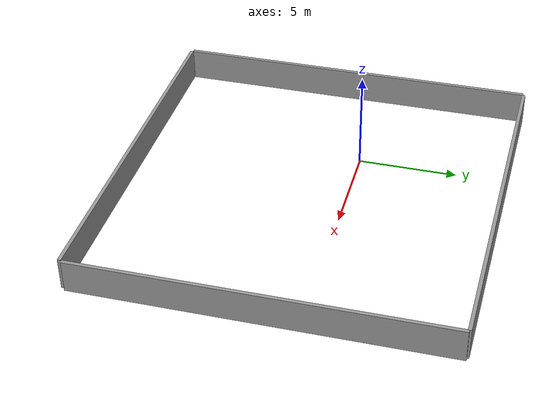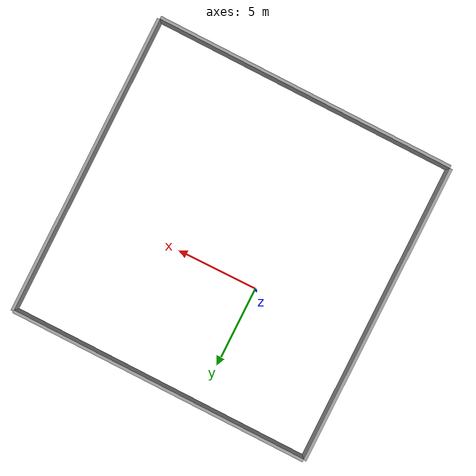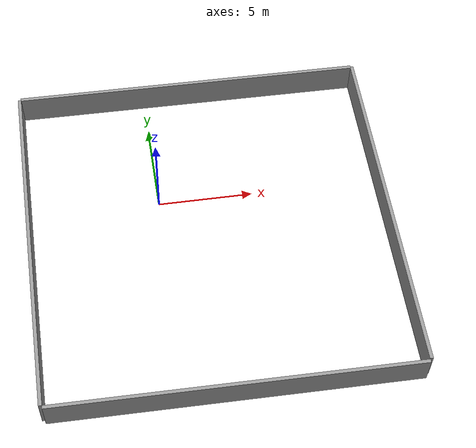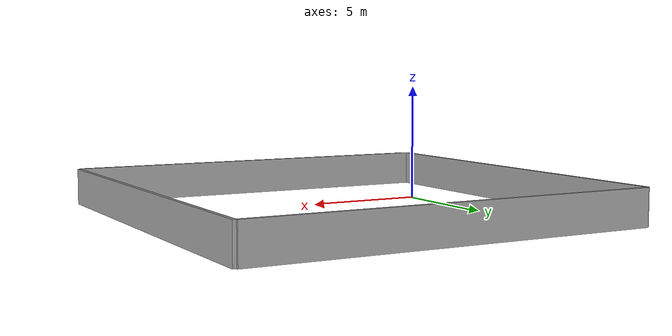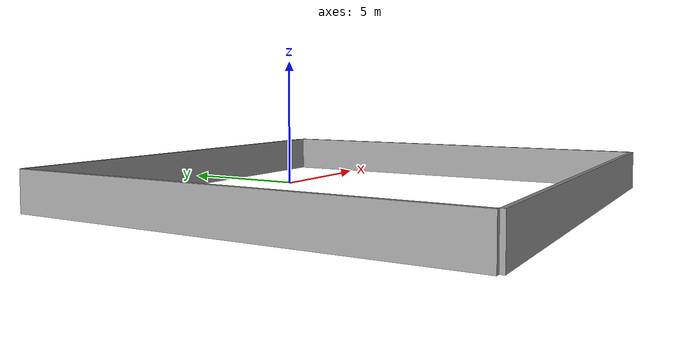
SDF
<?xml version='1.0'?>
<sdf version='1.6'>
  <model name='Confined_Area_20x20'>
    <link name='link_1'>
      <inertial>
        <mass>44564.1</mass>
        <inertia>
          <ixx>1.32603e+06</ixx>
          <ixy>0</ixy>
          <ixz>0</ixz>
          <iyy>11089.5</iyy>
          <iyz>0</iyz>
          <izz>1.31519e+06</izz>
        </inertia>
        <pose frame=''>0 0 0 0 -0 0</pose>
      </inertial>
      <pose frame=''>-6.97407 -1.86948 0 0 -0 0</pose>
      <gravity>1</gravity>
      <self_collide>0</self_collide>
      <kinematic>0</kinematic>
      <enable_wind>0</enable_wind>
      <visual name='visual'>
        <pose frame=''>0 0 0 0 -0 0</pose>
        <geometry>
          <box>
            <size>0.181322 18.8179 1.7185</size>
          </box>
        </geometry>
        <material>
          <lighting>1</lighting>
          <script>
            <uri>file://media/materials/scripts/gazebo.material</uri>
            <name>Gazebo/Grey</name>
          </script>
          <shader type='vertex'>
            <normal_map>__default__</normal_map>
          </shader>
        </material>
        <transparency>0</transparency>
        <cast_shadows>1</cast_shadows>
      </visual>
      <collision name='collision'>
        <laser_retro>0</laser_retro>
        <max_contacts>10</max_contacts>
        <pose frame=''>0 0 0 0 -0 0</pose>
        <geometry>
          <box>
            <size>0.181322 18.8179 1.7185</size>
          </box>
        </geometry>
        <surface>
          <friction>
            <ode>
              <mu>1</mu>
              <mu2>1</mu2>
              <fdir1>0 0 0</fdir1>
              <slip1>0</slip1>
              <slip2>0</slip2>
            </ode>
            <torsional>
              <coefficient>1</coefficient>
              <patch_radius>0</patch_radius>
              <surface_radius>0</surface_radius>
              <use_patch_radius>1</use_patch_radius>
              <ode>
                <slip>0</slip>
              </ode>
            </torsional>
          </friction>
          <bounce>
            <restitution_coefficient>0</restitution_coefficient>
            <threshold>1e+06</threshold>
          </bounce>
          <contact>
            <collide_without_contact>0</collide_without_contact>
            <collide_without_contact_bitmask>1</collide_without_contact_bitmask>
            <collide_bitmask>1</collide_bitmask>
            <ode>
              <soft_cfm>0</soft_cfm>
              <soft_erp>0.2</soft_erp>
              <kp>1e+13</kp>
              <kd>1</kd>
              <max_vel>0.01</max_vel>
              <min_depth>0</min_depth>
            </ode>
            <bullet>
              <split_impulse>1</split_impulse>
              <split_impulse_penetration_threshold>-0.01</split_impulse_penetration_threshold>
              <soft_cfm>0</soft_cfm>
              <soft_erp>0.2</soft_erp>
              <kp>1e+13</kp>
              <kd>1</kd>
            </bullet>
          </contact>
        </surface>
      </collision>
    </link>
    <link name='link_1_clone'>
      <inertial>
        <mass>44564.1</mass>
        <inertia>
          <ixx>1.32603e+06</ixx>
          <ixy>0</ixy>
          <ixz>0</ixz>
          <iyy>11089.5</iyy>
          <iyz>0</iyz>
          <izz>1.31519e+06</izz>
        </inertia>
        <pose frame=''>0 0 0 0 -0 0</pose>
      </inertial>
      <pose frame=''>11.9888 -2.03085 0.000703 0 -5.9e-05 0</pose>
      <gravity>1</gravity>
      <self_collide>0</self_collide>
      <kinematic>0</kinematic>
      <enable_wind>0</enable_wind>
      <visual name='visual'>
        <pose frame=''>0 0 0 0 -0 0</pose>
        <geometry>
          <box>
            <size>0.181322 18.8179 1.7185</size>
          </box>
        </geometry>
        <material>
          <lighting>1</lighting>
          <script>
            <uri>file://media/materials/scripts/gazebo.material</uri>
            <name>Gazebo/Grey</name>
          </script>
          <shader type='vertex'>
            <normal_map>__default__</normal_map>
          </shader>
        </material>
        <transparency>0</transparency>
        <cast_shadows>1</cast_shadows>
      </visual>
      <collision name='collision'>
        <laser_retro>0</laser_retro>
        <max_contacts>10</max_contacts>
        <pose frame=''>0 0 0 0 -0 0</pose>
        <geometry>
          <box>
            <size>0.181322 18.8179 1.7185</size>
          </box>
        </geometry>
        <surface>
          <friction>
            <ode>
              <mu>1</mu>
              <mu2>1</mu2>
              <fdir1>0 0 0</fdir1>
              <slip1>0</slip1>
              <slip2>0</slip2>
            </ode>
            <torsional>
              <coefficient>1</coefficient>
              <patch_radius>0</patch_radius>
              <surface_radius>0</surface_radius>
              <use_patch_radius>1</use_patch_radius>
              <ode>
                <slip>0</slip>
              </ode>
            </torsional>
          </friction>
          <bounce>
            <restitution_coefficient>0</restitution_coefficient>
            <threshold>1e+06</threshold>
          </bounce>
          <contact>
            <collide_without_contact>0</collide_without_contact>
            <collide_without_contact_bitmask>1</collide_without_contact_bitmask>
            <collide_bitmask>1</collide_bitmask>
            <ode>
              <soft_cfm>0</soft_cfm>
              <soft_erp>0.2</soft_erp>
              <kp>1e+13</kp>
              <kd>1</kd>
              <max_vel>0.01</max_vel>
              <min_depth>0</min_depth>
            </ode>
            <bullet>
              <split_impulse>1</split_impulse>
              <split_impulse_penetration_threshold>-0.01</split_impulse_penetration_threshold>
              <soft_cfm>0</soft_cfm>
              <soft_erp>0.2</soft_erp>
              <kp>1e+13</kp>
              <kd>1</kd>
            </bullet>
          </contact>
        </surface>
      </collision>
    </link>
    <link name='link_1_clone_0'>
      <inertial>
        <mass>44564.1</mass>
        <inertia>
          <ixx>1.32603e+06</ixx>
          <ixy>0</ixy>
          <ixz>0</ixz>
          <iyy>11089.5</iyy>
          <iyz>0</iyz>
          <izz>1.31519e+06</izz>
        </inertia>
        <pose frame=''>0 0 0 0 -0 0</pose>
      </inertial>
      <pose frame=''>2.5112 7.48856 0.000147 -5.9e-05 -1e-06 1.56029</pose>
      <gravity>1</gravity>
      <self_collide>0</self_collide>
      <kinematic>0</kinematic>
      <enable_wind>0</enable_wind>
      <visual name='visual'>
        <pose frame=''>0 0 0 0 -0 0</pose>
        <geometry>
          <box>
            <size>0.181322 18.8179 1.7185</size>
          </box>
        </geometry>
        <material>
          <lighting>1</lighting>
          <script>
            <uri>file://media/materials/scripts/gazebo.material</uri>
            <name>Gazebo/Grey</name>
          </script>
          <shader type='vertex'>
            <normal_map>__default__</normal_map>
          </shader>
        </material>
        <transparency>0</transparency>
        <cast_shadows>1</cast_shadows>
      </visual>
      <collision name='collision'>
        <laser_retro>0</laser_retro>
        <max_contacts>10</max_contacts>
        <pose frame=''>0 0 0 0 -0 0</pose>
        <geometry>
          <box>
            <size>0.181322 18.8179 1.7185</size>
          </box>
        </geometry>
        <surface>
          <friction>
            <ode>
              <mu>1</mu>
              <mu2>1</mu2>
              <fdir1>0 0 0</fdir1>
              <slip1>0</slip1>
              <slip2>0</slip2>
            </ode>
            <torsional>
              <coefficient>1</coefficient>
              <patch_radius>0</patch_radius>
              <surface_radius>0</surface_radius>
              <use_patch_radius>1</use_patch_radius>
              <ode>
                <slip>0</slip>
              </ode>
            </torsional>
          </friction>
          <bounce>
            <restitution_coefficient>0</restitution_coefficient>
            <threshold>1e+06</threshold>
          </bounce>
          <contact>
            <collide_without_contact>0</collide_without_contact>
            <collide_without_contact_bitmask>1</collide_without_contact_bitmask>
            <collide_bitmask>1</collide_bitmask>
            <ode>
              <soft_cfm>0</soft_cfm>
              <soft_erp>0.2</soft_erp>
              <kp>1e+13</kp>
              <kd>1</kd>
              <max_vel>0.01</max_vel>
              <min_depth>0</min_depth>
            </ode>
            <bullet>
              <split_impulse>1</split_impulse>
              <split_impulse_penetration_threshold>-0.01</split_impulse_penetration_threshold>
              <soft_cfm>0</soft_cfm>
              <soft_erp>0.2</soft_erp>
              <kp>1e+13</kp>
              <kd>1</kd>
            </bullet>
          </contact>
        </surface>
      </collision>
    </link>
    <link name='link_1_clone_0_clone'>
      <inertial>
        <mass>44564.1</mass>
        <inertia>
          <ixx>1.32603e+06</ixx>
          <ixy>0</ixy>
          <ixz>0</ixz>
          <iyy>11089.5</iyy>
          <iyz>0</iyz>
          <izz>1.31519e+06</izz>
        </inertia>
        <pose frame=''>0 0 0 0 -0 0</pose>
      </inertial>
      <pose frame=''>2.51624 -11.4629 0.000295 -0.000118 -2e-06 1.56029</pose>
      <gravity>1</gravity>
      <self_collide>0</self_collide>
      <kinematic>0</kinematic>
      <enable_wind>0</enable_wind>
      <visual name='visual'>
        <pose frame=''>0 0 0 0 -0 0</pose>
        <geometry>
          <box>
            <size>0.181322 18.8179 1.7185</size>
          </box>
        </geometry>
        <material>
          <lighting>1</lighting>
          <script>
            <uri>file://media/materials/scripts/gazebo.material</uri>
            <name>Gazebo/Grey</name>
          </script>
          <shader type='vertex'>
            <normal_map>__default__</normal_map>
          </shader>
        </material>
        <transparency>0</transparency>
        <cast_shadows>1</cast_shadows>
      </visual>
      <collision name='collision'>
        <laser_retro>0</laser_retro>
        <max_contacts>10</max_contacts>
        <pose frame=''>0 0 0 0 -0 0</pose>
        <geometry>
          <box>
            <size>0.181322 18.8179 1.7185</size>
          </box>
        </geometry>
        <surface>
          <friction>
            <ode>
              <mu>1</mu>
              <mu2>1</mu2>
              <fdir1>0 0 0</fdir1>
              <slip1>0</slip1>
              <slip2>0</slip2>
            </ode>
            <torsional>
              <coefficient>1</coefficient>
              <patch_radius>0</patch_radius>
              <surface_radius>0</surface_radius>
              <use_patch_radius>1</use_patch_radius>
              <ode>
                <slip>0</slip>
              </ode>
            </torsional>
          </friction>
          <bounce>
            <restitution_coefficient>0</restitution_coefficient>
            <threshold>1e+06</threshold>
          </bounce>
          <contact>
            <collide_without_contact>0</collide_without_contact>
            <collide_without_contact_bitmask>1</collide_without_contact_bitmask>
            <collide_bitmask>1</collide_bitmask>
            <ode>
              <soft_cfm>0</soft_cfm>
              <soft_erp>0.2</soft_erp>
              <kp>1e+13</kp>
              <kd>1</kd>
              <max_vel>0.01</max_vel>
              <min_depth>0</min_depth>
            </ode>
            <bullet>
              <split_impulse>1</split_impulse>
              <split_impulse_penetration_threshold>-0.01</split_impulse_penetration_threshold>
              <soft_cfm>0</soft_cfm>
              <soft_erp>0.2</soft_erp>
              <kp>1e+13</kp>
              <kd>1</kd>
            </bullet>
          </contact>
        </surface>
      </collision>
    </link>
    <static>0</static>
    <allow_auto_disable>1</allow_auto_disable>
  </model>
</sdf>
